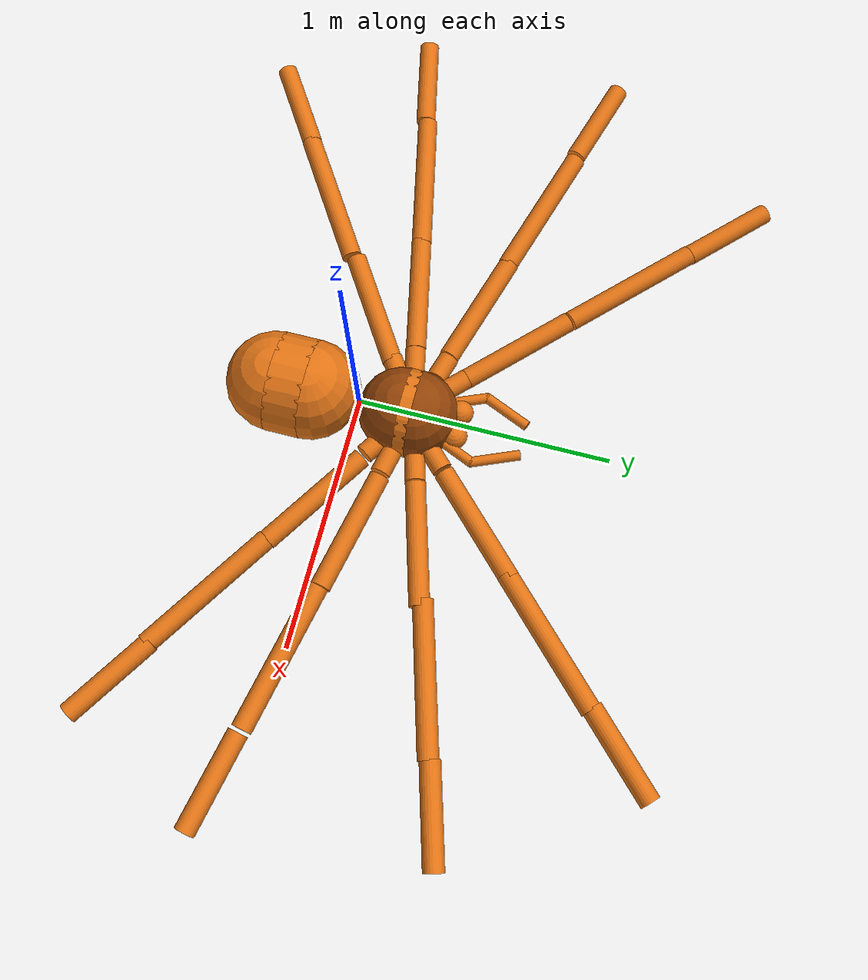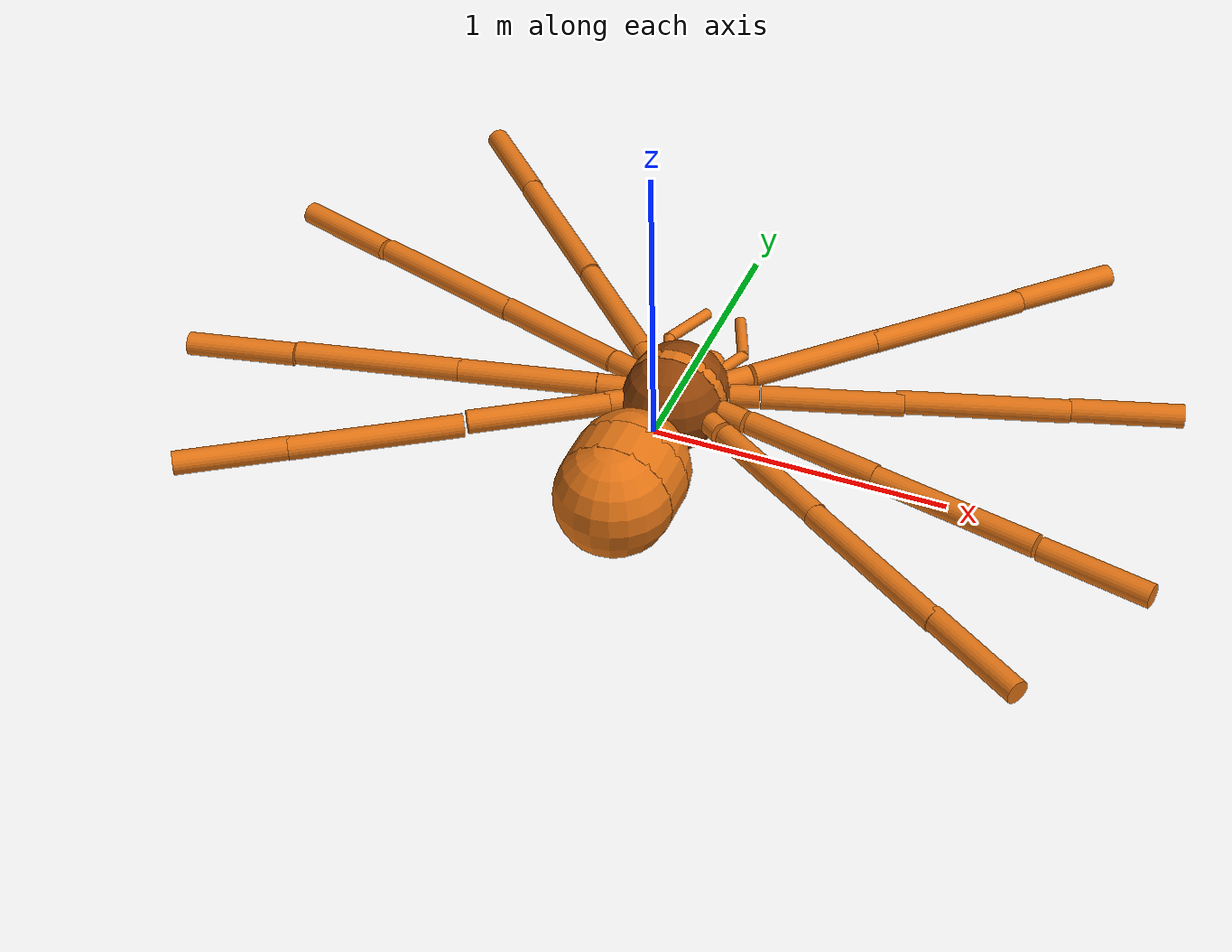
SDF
<?xml version='1.0'?>
<sdf version='1.6'>
<world name='default'>
	<model name="spider">

		<!-- Prevents the robot from falling through the world when visualized in Gazebo. -->
		<joint name="body2world" type="fixed">
			<parent>world</parent>
			<child>body</child>
		</joint>

		<!-- Floating base link -->

		<link name="body">
			<pose>0 0 0 0 0 0</pose>
			<inertial>
				<mass>1.57</mass>
				<inertia>
					<ixx>0.13083</ixx>
					<ixy>0</ixy>
					<ixz>0</ixz>
					<iyy>0</iyy>
					<iyz>0</iyz>
					<izz>0.13083</izz>
				</inertia>
			</inertial>
			<collision name="body_collision">
			    <pose>0 0 0 1.57 1.57 0 </pose>
				<geometry>
					<cylinder>
						<length>1</length>
						<radius>0.2</radius>
					</cylinder>
				</geometry>
			</collision>
			<visual name="abdomen_1">
		    	<pose>0 -0.2 0 0 0 0</pose>
				<geometry>
					<sphere>
						<radius>0.2</radius>
					</sphere>
				</geometry>
				<material>
				    <ambient>0.88 0.45 0.08 1</ambient>
					<diffuse>0.88 0.45 0.08 1</diffuse>
				</material>
			</visual>
			<visual name="abdomen_2">
		    	<pose>0 -0.27 0 1.57 1.57 0</pose>
				<geometry>
					<cylinder>
					    <length>0.14</length>
						<radius>0.2</radius>
					</cylinder>
				</geometry>
				<material>
				    <ambient>0.88 0.45 0.08 1</ambient>
					<diffuse>0.88 0.45 0.08 1</diffuse>
				</material>
			</visual>
			<visual name="abdomen_3">
		    	<pose>0 -0.34 0 0 0 0</pose>
				<geometry>
					<sphere>
						<radius>0.2</radius>
					</sphere>
				</geometry>
				<material>
				    <ambient>0.88 0.45 0.08 1</ambient>
					<diffuse>0.88 0.45 0.08 1</diffuse>
				</material>
			</visual>
			<visual name="thorax_1">
		    	<pose>0 0.175 0 0 0 0</pose>
				<geometry>
					<sphere>
						<radius>0.175</radius>
					</sphere>
				</geometry>
				<material>
				    <ambient>0.57 0.26 0.027 1</ambient>
					<diffuse>0.57 0.26 0.027 1</diffuse>
				</material>
			</visual>
			<visual name="thorax_2">
		    	<pose>0 0.2 0 1.57 1.57 0</pose>
				<geometry>
					<cylinder>
					    <length>0.048</length>
						<radius>0.175</radius>
					</cylinder>
				</geometry>
				<material>
				    <ambient>0.88 0.45 0.08 1</ambient>
					<diffuse>0.88 0.45 0.08 1</diffuse>
				</material>
			</visual>
			<visual name="thorax_3">
		    	<pose>0 0.223 0 0 0 0</pose>
				<geometry>
					<sphere>
						<radius>0.175</radius>
					</sphere>
				</geometry>
				<material>
				    <ambient>0.57 0.26 0.027 1</ambient>
					<diffuse>0.57 0.26 0.027 1</diffuse>
				</material>
			</visual>
			<visual name="chelicera_1">
		    	<pose>-0.05 0.398 0 0 0 0</pose>
				<geometry>
					<sphere>
						<radius>0.05</radius>
					</sphere>
				</geometry>
				<material>
				    <ambient>0.88 0.45 0.08 1</ambient>
					<diffuse>0.88 0.45 0.08 1</diffuse>
				</material>
			</visual>
			<visual name="chelicera_2">
		    	<pose>0.05 0.398 0 0 0 0</pose>
				<geometry>
					<sphere>
						<radius>0.05</radius>
					</sphere>
				</geometry>
				<material>
				    <ambient>0.88 0.45 0.08 1</ambient>
					<diffuse>0.88 0.45 0.08 1</diffuse>
				</material>
			</visual>
			<visual name="pedipalp_left_1">
		    	<pose>-0.1 0.398 0 1.57 1.57 0.4</pose>
				<geometry>
					<cylinder>
					    <length>0.2</length>
						<radius>0.02</radius>
					</cylinder>
				</geometry>
				<material>
				    <ambient>0.88 0.45 0.08 1</ambient>
					<diffuse>0.88 0.45 0.08 1</diffuse>
				</material>
			</visual>
			<visual name="pedipalp_left_2">
		    	<pose>-0.1 0.57 0 1.57 1.57 -0.4</pose>
				<geometry>
					<cylinder>
					    <length>0.2</length>
						<radius>0.02</radius>
					</cylinder>
				</geometry>
				<material>
				    <ambient>0.88 0.45 0.08 1</ambient>
					<diffuse>0.88 0.45 0.08 1</diffuse>
				</material>
			</visual>
			<visual name="pedipalp_right_1">
		    	<pose>0.1 0.398 0 1.57 1.57 -0.4</pose>
				<geometry>
					<cylinder>
					    <length>0.2</length>
						<radius>0.02</radius>
					</cylinder>
				</geometry>
				<material>
				    <ambient>0.88 0.45 0.08 1</ambient>
					<diffuse>0.88 0.45 0.08 1</diffuse>
				</material>
			</visual>
			<visual name="pedipalp_right_2">
		    	<pose>0.1 0.57 0 1.57 1.57 0.4</pose>
				<geometry>
					<cylinder>
					    <length>0.2</length>
						<radius>0.02</radius>
					</cylinder>
				</geometry>
				<material>
				    <ambient>0.88 0.45 0.08 1</ambient>
					<diffuse>0.88 0.45 0.08 1</diffuse>
				</material>
			</visual>
		</link>

		<!-- Leg 1 links -->

		<!-- A temporary link, for the temporary solution of testing
		this file using revolute instead of universal joints -->
		<link name="trochanter_1">
			<pose>-0.124 0.315 0 0 0 0.79</pose>
			<inertial>
				<pose>0 0.05 0 1.57 1.57 0</pose>
				<mass>0.00047</mass>
				<inertia>
					<ixx>0.0000016</ixx>
					<ixy>0</ixy>
					<ixz>0</ixz>
					<iyy>0</iyy>
					<iyz>0</iyz>
					<izz>0.0000016</izz>
				</inertia>
			</inertial>
			<collision name="trochanter_1_collision">
				<pose>0 0.05 0 1.57 1.57 0</pose>
				<geometry>
					<cylinder>
						<length>0.1</length>
						<radius>0.04</radius>
					</cylinder>
				</geometry>
			</collision>
			<visual name="trochanter_1_visual">
				<pose>0 0.05 0 1.57 1.57 0</pose>
				<geometry>
					<cylinder>
						<length>0.1</length>
						<radius>0.04</radius>
					</cylinder>
				</geometry>
				<material>
					<ambient>0.88 0.45 0.08 1</ambient>
					<diffuse>0.88 0.45 0.08 1</diffuse>
				</material>
			</visual>
		</link>

		<link name="femur_1">
			<pose>-0.194 0.385 0 0 0 0.79</pose>
			<inertial>
				<pose>0 0.24 0 1.57 1.57 0</pose>
				<mass>0.00226</mass>
				<inertia>
					<ixx>0.000174</ixx>
					<ixy>0</ixy>
					<ixz>0</ixz>
					<iyy>0</iyy>
					<iyz>0</iyz>
					<izz>0.000174</izz>
				</inertia>
			</inertial>
			<collision name="femur_1_collision">
				<pose>0 0.24 0 1.57 1.57 0</pose>
				<geometry>
					<cylinder>
						<length>0.48</length>
						<radius>0.04</radius>
					</cylinder>
				</geometry>
			</collision>
			<visual name="femur_1_visual">
				<pose>0 0.24 0 1.57 1.57 0</pose>
				<geometry>
					<cylinder>
						<length>0.48</length>
						<radius>0.04</radius>
					</cylinder>
				</geometry>
				<material>
					<ambient>0.88 0.45 0.08 1</ambient>
					<diffuse>0.88 0.45 0.08 1</diffuse>
				</material>
			</visual>
		</link>

		<link name="tibia_1">
			<pose>-0.54 0.73 0 0 0 0.79</pose>
			<inertial>
				<pose>0 0.29 0 1.57 1.57 0</pose>
				<mass>0.00273</mass>
				<inertia>
					<ixx>0.000306</ixx>
					<ixy>0</ixy>
					<ixz>0</ixz>
					<iyy>0</iyy>
					<iyz>0</iyz>
					<izz>0.000306</izz>
				</inertia>
			</inertial>
			<collision name="tibia_1_collision">
				<pose>0 0.29 0 1.57 1.57 0</pose>
				<geometry>
					<cylinder>
						<length>0.58</length>
						<radius>0.04</radius>
					</cylinder>
				</geometry>
			</collision>
			<visual name="tibia_1_visual">
				<pose>0 0.29 0 1.57 1.57 0</pose>
				<geometry>
					<cylinder>
						<length>0.58</length>
						<radius>0.04</radius>
					</cylinder>
				</geometry>
				<material>
					<ambient>0.88 0.45 0.08 1</ambient>
					<diffuse>0.88 0.45 0.08 1</diffuse>
				</material>
			</visual>
		</link>

		<link name="tarsus_1_L1">
			<pose>-0.95 1.14 0 0 0 0.79</pose>
			<inertial>
				<pose>0 0.19 0 1.57 1.57 0</pose>
				<mass>0.00179</mass>
				<inertia>
					<ixx>0.0000862</ixx>
					<ixy>0</ixy>
					<ixz>0</ixz>
					<iyy>0</iyy>
					<iyz>0</iyz>
					<izz>0.0000862</izz>
				</inertia>
			</inertial>
			<collision name="tarsus_1_collision">
				<pose>0 0.19 0 1.57 1.57 0</pose>
				<geometry>
					<cylinder>
						<length>0.38</length>
						<radius>0.04</radius>
					</cylinder>
				</geometry>
				<surface>
          			<friction>
            			<ode>
              				<mu>1</mu>
              				<mu2>1</mu2>
            			</ode>
          			</friction>
         		</surface>
			</collision>
			<visual name="tarsus_1_visual">
				<pose>0 0.19 0 1.57 1.57 0</pose>
				<geometry>
					<cylinder>
						<length>0.38</length>
						<radius>0.04</radius>
					</cylinder>
				</geometry>
				<material>
					<ambient>0.88 0.45 0.08 1</ambient>
					<diffuse>0.88 0.45 0.08 1</diffuse>
				</material>
			</visual>
		</link>

		<!-- Leg 1 joints -->

		<joint name="hip_1" type="revolute">
			<parent>body</parent>
			<child>trochanter_1</child>
			<axis>
				<!-- gazebo expects x-axis, pybullet expects y-axis -->
				<xyz>0 0 1</xyz>
				<limit>
					<lower>-0.61</lower>
					<upper>0.61</upper>
				</limit>
				<use_parent_model_frame>0</use_parent_model_frame>
			</axis>
		</joint>

		<joint name="hip2_1" type="revolute">
			<parent>trochanter_1</parent>
			<child>femur_1</child>
			<axis>
				<xyz>1 0 0</xyz>
				<limit>
					<lower>-0.916</lower>
					<upper>0.916</upper>
				</limit>
				<use_parent_model_frame>0</use_parent_model_frame>
			</axis>
		</joint>

		<joint name="knee_1" type="revolute">
			<parent>femur_1</parent>
			<child>tibia_1</child>
			<axis>
				<!-- gazebo expects x-axis, pybullet expects y-axis -->
				<xyz>1 0 0</xyz>
				<limit>
					<lower>-2.79</lower>
					<upper>0</upper>
				</limit>
			</axis>
		</joint>

		<joint name="ankle_1" type="revolute">
			<parent>tibia_1</parent>
			<child>tarsus_1_L1</child>
			<axis>
				<!-- gazebo expects x-axis, pybullet expects y-axis -->
				<xyz>1 0 0</xyz>
				<limit>
					<lower>-0.61</lower>
					<upper>1.57</upper>
				</limit>
			</axis>
		</joint>

		<!-- Leg 2 links -->

		<!-- A temporary link, for the temporary solution of testing
		this file using revolute instead of universal joints -->
		<link name="trochanter_2">
			<pose>-0.169 0.268 0 0 0 1.28</pose>
			<inertial>
				<pose>0 0.05 0 1.57 1.57 0</pose>
				<mass>0.00047</mass>
				<inertia>
					<ixx>0.0000016</ixx>
					<ixy>0</ixy>
					<ixz>0</ixz>
					<iyy>0</iyy>
					<iyz>0</iyz>
					<izz>0.0000016</izz>
				</inertia>
			</inertial>
			<collision name="trochanter_2_collision">
				<pose>0 0.05 0 1.57 1.57 0</pose>
				<geometry>
					<cylinder>
						<length>0.1</length>
						<radius>0.04</radius>
					</cylinder>
				</geometry>
			</collision>
			<visual name="trochanter_2_visual">
				<pose>0 0.05 0 1.57 1.57 0</pose>
				<geometry>
					<cylinder>
						<length>0.1</length>
						<radius>0.04</radius>
					</cylinder>
				</geometry>
				<material>
					<ambient>0.88 0.45 0.08 1</ambient>
					<diffuse>0.88 0.45 0.08 1</diffuse>
				</material>
			</visual>
		</link>

		<link name="femur_2">
			<pose>-0.269 0.294 0 0 0 1.28</pose>
			<inertial>
				<pose>0 0.24 0 1.57 1.57 0</pose>
				<mass>0.00226</mass>
				<inertia>
					<ixx>0.000174</ixx>
					<ixy>0</ixy>
					<ixz>0</ixz>
					<iyy>0</iyy>
					<iyz>0</iyz>
					<izz>0.000174</izz>
				</inertia>
			</inertial>
			<collision name="femur_2_collision">
				<pose>0 0.24 0 1.57 1.57 0</pose>
				<geometry>
					<cylinder>
						<length>0.48</length>
						<radius>0.04</radius>
					</cylinder>
				</geometry>
			</collision>
			<visual name="femur_2_visual">
				<pose>0 0.24 0 1.57 1.57 0</pose>
				<geometry>
					<cylinder>
						<length>0.48</length>
						<radius>0.04</radius>
					</cylinder>
				</geometry>
				<material>
					<ambient>0.88 0.45 0.08 1</ambient>
					<diffuse>0.88 0.45 0.08 1</diffuse>
				</material>
			</visual>
		</link>

		<link name="tibia_2">
			<pose>-0.72 0.426 0 0 0 1.28</pose>
			<inertial>
				<pose>0 0.29 0 1.57 1.57 0</pose>
				<mass>0.00273</mass>
				<inertia>
					<ixx>0.000306</ixx>
					<ixy>0</ixy>
					<ixz>0</ixz>
					<iyy>0</iyy>
					<iyz>0</iyz>
					<izz>0.000306</izz>
				</inertia>
			</inertial>
			<collision name="tibia_2_collision">
				<pose>0 0.29 0 1.57 1.57 0</pose>
				<geometry>
					<cylinder>
						<length>0.58</length>
						<radius>0.04</radius>
					</cylinder>
				</geometry>
			</collision>
			<visual name="tibia_2_visual">
				<pose>0 0.29 0 1.57 1.57 0</pose>
				<geometry>
					<cylinder>
						<length>0.58</length>
						<radius>0.04</radius>
					</cylinder>
				</geometry>
				<material>
					<ambient>0.88 0.45 0.08 1</ambient>
					<diffuse>0.88 0.45 0.08 1</diffuse>
				</material>
			</visual>
		</link>

		<link name="tarsus_2_L2">
			<pose>-1.29 0.590 0 0 0 1.28</pose>
			<inertial>
				<pose>0 0.19 0 1.57 1.57 0</pose>
				<mass>0.00179</mass>
				<inertia>
					<ixx>0.0000862</ixx>
					<ixy>0</ixy>
					<ixz>0</ixz>
					<iyy>0</iyy>
					<iyz>0</iyz>
					<izz>0.0000862</izz>
				</inertia>
			</inertial>
			<collision name="tarsus_2_collision">
				<pose>0 0.19 0 1.57 1.57 0</pose>
				<geometry>
					<cylinder>
						<length>0.38</length>
						<radius>0.04</radius>
					</cylinder>
				</geometry>
				<surface>
          			<friction>
            			<ode>
              				<mu>1</mu>
              				<mu2>1</mu2>
            			</ode>
          			</friction>
         		</surface>
			</collision>
			<visual name="tarsus_2_visual">
				<pose>0 0.19 0 1.57 1.57 0</pose>
				<geometry>
					<cylinder>
						<length>0.38</length>
						<radius>0.04</radius>
					</cylinder>
				</geometry>
				<material>
					<ambient>0.88 0.45 0.08 1</ambient>
					<diffuse>0.88 0.45 0.08 1</diffuse>
				</material>
			</visual>
		</link>

		<!-- Leg 2 joints -->

		<joint name="hip_2" type="revolute">
			<parent>body</parent>
			<child>trochanter_2</child>
			<axis>
				<!-- gazebo expects x-axis, pybullet expects y-axis -->
				<xyz>0 0 1</xyz>
				<limit>
					<lower>-0.61</lower>
					<upper>0.61</upper>
				</limit>
				<use_parent_model_frame>0</use_parent_model_frame>
			</axis>
		</joint>
		<joint name="hip2_2" type="revolute">
			<parent>trochanter_2</parent>
			<child>femur_2</child>
			<axis>
				<xyz>1 0 0</xyz>
				<limit>
					<lower>-0.916</lower>
					<upper>0.916</upper>
				</limit>
				<use_parent_model_frame>0</use_parent_model_frame>
			</axis>
		</joint>

		<joint name="knee_2" type="revolute">
			<parent>femur_2</parent>
			<child>tibia_2</child>
			<axis>
				<!-- gazebo expects x-axis, pybullet expects y-axis -->
				<xyz>1 0 0</xyz>
				<limit>
					<lower>-2.79</lower>
					<upper>0</upper>
				</limit>
			</axis>
		</joint>

		<joint name="ankle_2" type="revolute">
			<parent>tibia_2</parent>
			<child>tarsus_2_L2</child>
			<axis>
				<!-- gazebo expects x-axis, pybullet expects y-axis -->
				<xyz>1 0 0</xyz>
				<limit>
					<lower>-0.61</lower>
					<upper>1.57</upper>
				</limit>
			</axis>
		</joint>

		<!-- Leg 3 links -->

		<!-- A temporary link, for the temporary solution of testing
		this file using revolute instead of universal joints -->
		<link name="trochanter_3">
			<pose>-0.169 0.178 0 0 0 1.78</pose>
			<inertial>
				<pose>0 0.05 0 1.57 1.57 0</pose>
				<mass>0.00047</mass>
				<inertia>
					<ixx>0.0000016</ixx>
					<ixy>0</ixy>
					<ixz>0</ixz>
					<iyy>0</iyy>
					<iyz>0</iyz>
					<izz>0.0000016</izz>
				</inertia>
			</inertial>
			<collision name="trochanter_3_collision">
				<pose>0 0.05 0 1.57 1.57 0</pose>
				<geometry>
					<cylinder>
						<length>0.1</length>
						<radius>0.04</radius>
					</cylinder>
				</geometry>
			</collision>
			<visual name="trochanter_3_visual">
				<pose>0 0.05 0 1.57 1.57 0</pose>
				<geometry>
					<cylinder>
						<length>0.1</length>
						<radius>0.04</radius>
					</cylinder>
				</geometry>
				<material>
					<ambient>0.88 0.45 0.08 1</ambient>
					<diffuse>0.88 0.45 0.08 1</diffuse>
				</material>
			</visual>
		</link>

		<link name="femur_3">
			<pose>-0.269 0.158 0 0 0 1.78</pose>
			<inertial>
				<pose>0 0.24 0 1.57 1.57 0</pose>
				<mass>0.00226</mass>
				<inertia>
					<ixx>0.000174</ixx>
					<ixy>0</ixy>
					<ixz>0</ixz>
					<iyy>0</iyy>
					<iyz>0</iyz>
					<izz>0.000174</izz>
				</inertia>
			</inertial>
			<collision name="femur_3_collision">
				<pose>0 0.24 0 1.57 1.57 0</pose>
				<geometry>
					<cylinder>
						<length>0.48</length>
						<radius>0.04</radius>
					</cylinder>
				</geometry>
			</collision>
			<visual name="femur_3_visual">
				<pose>0 0.24 0 1.57 1.57 0</pose>
				<geometry>
					<cylinder>
						<length>0.48</length>
						<radius>0.04</radius>
					</cylinder>
				</geometry>
				<material>
					<ambient>0.88 0.45 0.08 1</ambient>
					<diffuse>0.88 0.45 0.08 1</diffuse>
				</material>
			</visual>
		</link>

		<link name="tibia_3">
			<pose>-0.73 0.06 0 0 0 1.78</pose>
			<inertial>
				<pose>0 0.29 0 1.57 1.57 0</pose>
				<mass>0.00273</mass>
				<inertia>
					<ixx>0.000306</ixx>
					<ixy>0</ixy>
					<ixz>0</ixz>
					<iyy>0</iyy>
					<iyz>0</iyz>
					<izz>0.000306</izz>
				</inertia>
			</inertial>
			<collision name="tibia_3_collision">
				<pose>0 0.29 0 1.57 1.57 0</pose>
				<geometry>
					<cylinder>
						<length>0.58</length>
						<radius>0.04</radius>
					</cylinder>
				</geometry>
			</collision>
			<visual name="tibia_3_visual">
				<pose>0 0.29 0 1.57 1.57 0</pose>
				<geometry>
					<cylinder>
						<length>0.58</length>
						<radius>0.04</radius>
					</cylinder>
				</geometry>
				<material>
					<ambient>0.88 0.45 0.08 1</ambient>
					<diffuse>0.88 0.45 0.08 1</diffuse>
				</material>
			</visual>
		</link>

		<link name="tarsus_3_L3">
			<pose>-1.30 -0.07 0 0 0 1.78</pose>
			<inertial>
				<pose>0 0.19 0 1.57 1.57 0</pose>
				<mass>0.00179</mass>
				<inertia>
					<ixx>0.0000862</ixx>
					<ixy>0</ixy>
					<ixz>0</ixz>
					<iyy>0</iyy>
					<iyz>0</iyz>
					<izz>0.0000862</izz>
				</inertia>
			</inertial>
			<collision name="tarsus_3_collision">
				<pose>0 0.19 0 1.57 1.57 0</pose>
				<geometry>
					<cylinder>
						<length>0.38</length>
						<radius>0.04</radius>
					</cylinder>
				</geometry>
				<surface>
          			<friction>
            			<ode>
              				<mu>1</mu>
              				<mu2>1</mu2>
            			</ode>
          			</friction>
         		</surface>
			</collision>
			<visual name="tarsus_3_visual">
				<pose>0 0.19 0 1.57 1.57 0</pose>
				<geometry>
					<cylinder>
						<length>0.38</length>
						<radius>0.04</radius>
					</cylinder>
				</geometry>
				<material>
					<ambient>0.88 0.45 0.08 1</ambient>
					<diffuse>0.88 0.45 0.08 1</diffuse>
				</material>
			</visual>
		</link>

		<!-- Leg 3 joints -->

		<joint name="hip_3" type="revolute">
			<parent>body</parent>
			<child>trochanter_3</child>
			<axis>
				<!-- gazebo expects x-axis, pybullet expects y-axis -->
				<xyz>0 0 1</xyz>
				<limit>
					<lower>-0.61</lower>
					<upper>0.61</upper>
				</limit>
				<use_parent_model_frame>0</use_parent_model_frame>
			</axis>
		</joint>
		<joint name="hip2_3" type="revolute">
			<parent>trochanter_3</parent>
			<child>femur_3</child>
			<axis>
				<xyz>1 0 0</xyz>
				<limit>
					<lower>-0.916</lower>
					<upper>0.916</upper>
				</limit>
				<use_parent_model_frame>0</use_parent_model_frame>
			</axis>
		</joint>

		<joint name="knee_3" type="revolute">
			<parent>femur_3</parent>
			<child>tibia_3</child>
			<axis>
				<!-- gazebo expects x-axis, pybullet expects y-axis -->
				<xyz>1 0 0</xyz>
				<limit>
					<lower>-2.79</lower>
					<upper>0</upper>
				</limit>
			</axis>
		</joint>

		<joint name="ankle_3" type="revolute">
			<parent>tibia_3</parent>
			<child>tarsus_3_L3</child>
			<axis>
				<!-- gazebo expects x-axis, pybullet expects y-axis -->
				<xyz>1 0 0</xyz>
				<limit>
					<lower>-0.61</lower>
					<upper>1.57</upper>
				</limit>
			</axis>
		</joint>

		<!-- Leg 4 links -->

		<!-- A temporary link, for the temporary solution of testing
		this file using revolute instead of universal joints -->
		<link name="trochanter_4">
			<pose>-0.124 0.131 0 0 0 2.147</pose>
			<inertial>
				<pose>0 0.05 0 1.57 1.57 0</pose>
				<mass>0.00047</mass>
				<inertia>
					<ixx>0.0000016</ixx>
					<ixy>0</ixy>
					<ixz>0</ixz>
					<iyy>0</iyy>
					<iyz>0</iyz>
					<izz>0.0000016</izz>
				</inertia>
			</inertial>
			<collision name="trochanter_4_collision">
				<pose>0 0.05 0 1.57 1.57 0</pose>
				<geometry>
					<cylinder>
						<length>0.1</length>
						<radius>0.04</radius>
					</cylinder>
				</geometry>
			</collision>
			<visual name="trochanter_4_visual">
				<pose>0 0.05 0 1.57 1.57 0</pose>
				<geometry>
					<cylinder>
						<length>0.1</length>
						<radius>0.04</radius>
					</cylinder>
				</geometry>
				<material>
					<ambient>0.88 0.45 0.08 1</ambient>
					<diffuse>0.88 0.45 0.08 1</diffuse>
				</material>
			</visual>
		</link>

		<link name="femur_4">
			<pose>-0.194 0.081 0 0 0 2.147</pose>
			<inertial>
				<pose>0 0.24 0 1.57 1.57 0</pose>
				<mass>0.00226</mass>
				<inertia>
					<ixx>0.000174</ixx>
					<ixy>0</ixy>
					<ixz>0</ixz>
					<iyy>0</iyy>
					<iyz>0</iyz>
					<izz>0.000174</izz>
				</inertia>
			</inertial>
			<collision name="femur_4_collision">
				<pose>0 0.24 0 1.57 1.57 0</pose>
				<geometry>
					<cylinder>
						<length>0.48</length>
						<radius>0.04</radius>
					</cylinder>
				</geometry>
			</collision>
			<visual name="femur_4_visual">
				<pose>0 0.24 0 1.57 1.57 0</pose>
				<geometry>
					<cylinder>
						<length>0.48</length>
						<radius>0.04</radius>
					</cylinder>
				</geometry>
				<material>
					<ambient>0.88 0.45 0.08 1</ambient>
					<diffuse>0.88 0.45 0.08 1</diffuse>
				</material>
			</visual>
		</link>

		<link name="tibia_4">
			<pose>-0.60 -0.20 0 0 0 2.147</pose>
			<inertial>
				<pose>0 0.29 0 1.57 1.57 0</pose>
				<mass>0.00273</mass>
				<inertia>
					<ixx>0.000306</ixx>
					<ixy>0</ixy>
					<ixz>0</ixz>
					<iyy>0</iyy>
					<iyz>0</iyz>
					<izz>0.000306</izz>
				</inertia>
			</inertial>
			<collision name="tibia_4_collision">
				<pose>0 0.29 0 1.57 1.57 0</pose>
				<geometry>
					<cylinder>
						<length>0.58</length>
						<radius>0.04</radius>
					</cylinder>
				</geometry>
			</collision>
			<visual name="tibia_4_visual">
				<pose>0 0.29 0 1.57 1.57 0</pose>
				<geometry>
					<cylinder>
						<length>0.58</length>
						<radius>0.04</radius>
					</cylinder>
				</geometry>
				<material>
					<ambient>0.88 0.45 0.08 1</ambient>
					<diffuse>0.88 0.45 0.08 1</diffuse>
				</material>
			</visual>
		</link>

		<link name="tarsus_4_L4">
			<pose>-1.08 -0.51 0 0 0 2.147</pose>
			<inertial>
				<pose>0 0.19 0 1.57 1.57 0</pose>
				<mass>0.00179</mass>
				<inertia>
					<ixx>0.0000862</ixx>
					<ixy>0</ixy>
					<ixz>0</ixz>
					<iyy>0</iyy>
					<iyz>0</iyz>
					<izz>0.0000862</izz>
				</inertia>
			</inertial>
			<collision name="tarsus_4_collision">
				<pose>0 0.19 0 1.57 1.57 0</pose>
				<geometry>
					<cylinder>
						<length>0.38</length>
						<radius>0.04</radius>
					</cylinder>
				</geometry>
				<surface>
          			<friction>
            			<ode>
              				<mu>1</mu>
              				<mu2>1</mu2>
            			</ode>
          			</friction>
         		</surface>
			</collision>
			<visual name="tarsus_4_visual">
				<pose>0 0.19 0 1.57 1.57 0</pose>
				<geometry>
					<cylinder>
						<length>0.38</length>
						<radius>0.04</radius>
					</cylinder>
				</geometry>
				<material>
					<ambient>0.88 0.45 0.08 1</ambient>
					<diffuse>0.88 0.45 0.08 1</diffuse>
				</material>
			</visual>
		</link>

		<!-- Leg 4 joints -->

		<joint name="hip_4" type="revolute">
			<parent>body</parent>
			<child>trochanter_4</child>
			<axis>
				<!-- gazebo expects x-axis, pybullet expects y-axis -->
				<xyz>0 0 1</xyz>
				<limit>
					<lower>-0.61</lower>
					<upper>0.61</upper>
				</limit>
				<use_parent_model_frame>0</use_parent_model_frame>
			</axis>
		</joint>
		<joint name="hip2_4" type="revolute">
			<parent>trochanter_4</parent>
			<child>femur_4</child>
			<axis>
				<xyz>1 0 0</xyz>
				<limit>
					<lower>-0.916</lower>
					<upper>0.916</upper>
				</limit>
				<use_parent_model_frame>0</use_parent_model_frame>
			</axis>
		</joint>

		<joint name="knee_4" type="revolute">
			<parent>femur_4</parent>
			<child>tibia_4</child>
			<axis>
				<!-- gazebo expects x-axis, pybullet expects y-axis -->
				<xyz>1 0 0</xyz>
				<limit>
					<lower>-2.79</lower>
					<upper>0</upper>
				</limit>
			</axis>
		</joint>

		<joint name="ankle_4" type="revolute">
			<parent>tibia_4</parent>
			<child>tarsus_4_L4</child>
			<axis>
				<!-- gazebo expects x-axis, pybullet expects y-axis -->
				<xyz>1 0 0</xyz>
				<limit>
					<lower>-0.61</lower>
					<upper>1.57</upper>
				</limit>
			</axis>
		</joint>

		<!-- Leg 5 links -->

		<!-- A temporary link, for the temporary solution of testing
		this file using revolute instead of universal joints -->
		<link name="trochanter_5">
			<pose>0.124 0.131 0 0 0 4.14</pose>
			<inertial>
				<pose>0 0.05 0 1.57 1.57 0</pose>
				<mass>0.00047</mass>
				<inertia>
					<ixx>0.0000016</ixx>
					<ixy>0</ixy>
					<ixz>0</ixz>
					<iyy>0</iyy>
					<iyz>0</iyz>
					<izz>0.0000016</izz>
				</inertia>
			</inertial>
			<collision name="trochanter_5_collision">
				<pose>0 0.05 0 1.57 1.57 0</pose>
				<geometry>
					<cylinder>
						<length>0.1</length>
						<radius>0.04</radius>
					</cylinder>
				</geometry>
			</collision>
			<visual name="trochanter_5_visual">
				<pose>0 0.05 0 1.57 1.57 0</pose>
				<geometry>
					<cylinder>
						<length>0.1</length>
						<radius>0.04</radius>
					</cylinder>
				</geometry>
				<material>
					<ambient>0.88 0.45 0.08 1</ambient>
					<diffuse>0.88 0.45 0.08 1</diffuse>
				</material>
			</visual>
		</link>

		<link name="femur_5">
			<pose>0.225 0.071 0 0 0 4.14</pose>
			<inertial>
				<pose>0 0.24 0 1.57 1.57 0</pose>
				<mass>0.00226</mass>
				<inertia>
					<ixx>0.000174</ixx>
					<ixy>0</ixy>
					<ixz>0</ixz>
					<iyy>0</iyy>
					<iyz>0</iyz>
					<izz>0.000174</izz>
				</inertia>
			</inertial>
			<collision name="femur_5_collision">
				<pose>0 0.24 0 1.57 1.57 0</pose>
				<geometry>
					<cylinder>
						<length>0.48</length>
						<radius>0.04</radius>
					</cylinder>
				</geometry>
			</collision>
			<visual name="femur_5_visual">
				<pose>0 0.24 0 1.57 1.57 0</pose>
				<geometry>
					<cylinder>
						<length>0.48</length>
						<radius>0.04</radius>
					</cylinder>
				</geometry>
				<material>
					<ambient>0.88 0.45 0.08 1</ambient>
					<diffuse>0.88 0.45 0.08 1</diffuse>
				</material>
			</visual>
		</link>

		<link name="tibia_5">
			<pose>0.624 -0.19 0 0 0 4.14</pose>
			<inertial>
				<pose>0 0.29 0 1.57 1.57 0</pose>
				<mass>0.00273</mass>
				<inertia>
					<ixx>0.000306</ixx>
					<ixy>0</ixy>
					<ixz>0</ixz>
					<iyy>0</iyy>
					<iyz>0</iyz>
					<izz>0.000306</izz>
				</inertia>
			</inertial>
			<collision name="tibia_5_collision">
				<pose>0 0.29 0 1.57 1.57 0</pose>
				<geometry>
					<cylinder>
						<length>0.58</length>
						<radius>0.04</radius>
					</cylinder>
				</geometry>
			</collision>
			<visual name="tibia_5_visual">
				<pose>0 0.29 0 1.57 1.57 0</pose>
				<geometry>
					<cylinder>
						<length>0.58</length>
						<radius>0.04</radius>
					</cylinder>
				</geometry>
				<material>
					<ambient>0.88 0.45 0.08 1</ambient>
					<diffuse>0.88 0.45 0.08 1</diffuse>
				</material>
			</visual>
		</link>

		<link name="tarsus_5_R4">
			<pose>1.1 -0.49 0 0 0 4.14</pose>
			<inertial>
				<pose>0 0.19 0 1.57 1.57 0</pose>
				<mass>0.00179</mass>
				<inertia>
					<ixx>0.0000862</ixx>
					<ixy>0</ixy>
					<ixz>0</ixz>
					<iyy>0</iyy>
					<iyz>0</iyz>
					<izz>0.0000862</izz>
				</inertia>
			</inertial>
			<collision name="tarsus_5_collision">
				<pose>0 0.19 0 1.57 1.57 0</pose>
				<geometry>
					<cylinder>
						<length>0.38</length>
						<radius>0.04</radius>
					</cylinder>
				</geometry>
				<surface>
          			<friction>
            			<ode>
              				<mu>1</mu>
              				<mu2>1</mu2>
            			</ode>
          			</friction>
         		</surface>
			</collision>
			<visual name="tarsus_5_visual">
				<pose>0 0.19 0 1.57 1.57 0</pose>
				<geometry>
					<cylinder>
						<length>0.38</length>
						<radius>0.04</radius>
					</cylinder>
				</geometry>
				<material>
					<ambient>0.88 0.45 0.08 1</ambient>
					<diffuse>0.88 0.45 0.08 1</diffuse>
				</material>
			</visual>
		</link>

		<!-- Leg 5 joints -->

		<joint name="hip_5" type="revolute">
			<parent>body</parent>
			<child>trochanter_5</child>
			<axis>
				<!-- gazebo expects x-axis, pybullet expects y-axis -->
				<xyz>0 0 1</xyz>
				<limit>
					<lower>-0.61</lower>
					<upper>0.61</upper>
				</limit>
				<use_parent_model_frame>0</use_parent_model_frame>
			</axis>
		</joint>
		<joint name="hip2_5" type="revolute">
			<parent>trochanter_5</parent>
			<child>femur_5</child>
			<axis>
				<xyz>1 0 0</xyz>
				<limit>
					<lower>-0.916</lower>
					<upper>0.916</upper>
				</limit>
				<use_parent_model_frame>0</use_parent_model_frame>
			</axis>
		</joint>

		<joint name="knee_5" type="revolute">
			<parent>femur_5</parent>
			<child>tibia_5</child>
			<axis>
				<!-- gazebo expects x-axis, pybullet expects y-axis -->
				<xyz>1 0 0</xyz>
				<limit>
					<lower>-2.79</lower>
					<upper>0</upper>
				</limit>
			</axis>
		</joint>

		<joint name="ankle_5" type="revolute">
			<parent>tibia_5</parent>
			<child>tarsus_5_R4</child>
			<axis>
				<!-- gazebo expects x-axis, pybullet expects y-axis -->
				<xyz>1 0 0</xyz>
				<limit>
					<lower>-0.61</lower>
					<upper>1.57</upper>
				</limit>
			</axis>
		</joint>

		<!-- Leg 6 links -->

		<!-- A temporary link, for the temporary solution of testing
		this file using revolute instead of universal joints -->
		<link name="trochanter_6">
			<pose>0.169 0.178 0 0 0 4.5</pose>
			<inertial>
				<pose>0 0.05 0 1.57 1.57 0</pose>
				<mass>0.00047</mass>
				<inertia>
					<ixx>0.0000016</ixx>
					<ixy>0</ixy>
					<ixz>0</ixz>
					<iyy>0</iyy>
					<iyz>0</iyz>
					<izz>0.0000016</izz>
				</inertia>
			</inertial>
			<collision name="trochanter_6_collision">
				<pose>0 0.05 0 1.57 1.57 0</pose>
				<geometry>
					<cylinder>
						<length>0.1</length>
						<radius>0.04</radius>
					</cylinder>
				</geometry>
			</collision>
			<visual name="trochanter_6_visual">
				<pose>0 0.05 0 1.57 1.57 0</pose>
				<geometry>
					<cylinder>
						<length>0.1</length>
						<radius>0.04</radius>
					</cylinder>
				</geometry>
				<material>
					<ambient>0.88 0.45 0.08 1</ambient>
					<diffuse>0.88 0.45 0.08 1</diffuse>
				</material>
			</visual>
		</link>

		<link name="femur_6">
			<pose>0.28 0.158 0 0 0 4.5</pose>
			<inertial>
				<pose>0 0.24 0 1.57 1.57 0</pose>
				<mass>0.00226</mass>
				<inertia>
					<ixx>0.000174</ixx>
					<ixy>0</ixy>
					<ixz>0</ixz>
					<iyy>0</iyy>
					<iyz>0</iyz>
					<izz>0.000174</izz>
				</inertia>
			</inertial>
			<collision name="femur_6_collision">
				<pose>0 0.24 0 1.57 1.57 0</pose>
				<geometry>
					<cylinder>
						<length>0.48</length>
						<radius>0.04</radius>
					</cylinder>
				</geometry>
			</collision>
			<visual name="femur_6_visual">
				<pose>0 0.24 0 1.57 1.57 0</pose>
				<geometry>
					<cylinder>
						<length>0.48</length>
						<radius>0.04</radius>
					</cylinder>
				</geometry>
				<material>
					<ambient>0.88 0.45 0.08 1</ambient>
					<diffuse>0.88 0.45 0.08 1</diffuse>
				</material>
			</visual>
		</link>

		<link name="tibia_6">
			<pose>0.75 0.05 0 0 0 4.5</pose>
			<inertial>
				<pose>0 0.29 0 1.57 1.57 0</pose>
				<mass>0.00273</mass>
				<inertia>
					<ixx>0.000306</ixx>
					<ixy>0</ixy>
					<ixz>0</ixz>
					<iyy>0</iyy>
					<iyz>0</iyz>
					<izz>0.000306</izz>
				</inertia>
			</inertial>
			<collision name="tibia_6_collision">
				<pose>0 0.29 0 1.57 1.57 0</pose>
				<geometry>
					<cylinder>
						<length>0.58</length>
						<radius>0.04</radius>
					</cylinder>
				</geometry>
			</collision>
			<visual name="tibia_6_visual">
				<pose>0 0.29 0 1.57 1.57 0</pose>
				<geometry>
					<cylinder>
						<length>0.58</length>
						<radius>0.04</radius>
					</cylinder>
				</geometry>
				<material>
					<ambient>0.88 0.45 0.08 1</ambient>
					<diffuse>0.88 0.45 0.08 1</diffuse>
				</material>
			</visual>
		</link>

		<link name="tarsus_6_R3">
			<pose>1.33 -0.08 0 0 0 4.5</pose>
			<inertial>
				<pose>0 0.19 0 1.57 1.57 0</pose>
				<mass>0.00179</mass>
				<inertia>
					<ixx>0.0000862</ixx>
					<ixy>0</ixy>
					<ixz>0</ixz>
					<iyy>0</iyy>
					<iyz>0</iyz>
					<izz>0.0000862</izz>
				</inertia>
			</inertial>
			<collision name="tarsus_6_collision">
				<pose>0 0.19 0 1.57 1.57 0</pose>
				<geometry>
					<cylinder>
						<length>0.38</length>
						<radius>0.04</radius>
					</cylinder>
				</geometry>
				<surface>
          			<friction>
            			<ode>
              				<mu>1</mu>
              				<mu2>1</mu2>
            			</ode>
          			</friction>
         		</surface>
			</collision>
			<visual name="tarsus_6_visual">
				<pose>0 0.19 0 1.57 1.57 0</pose>
				<geometry>
					<cylinder>
						<length>0.38</length>
						<radius>0.04</radius>
					</cylinder>
				</geometry>
				<material>
					<ambient>0.88 0.45 0.08 1</ambient>
					<diffuse>0.88 0.45 0.08 1</diffuse>
				</material>
			</visual>
		</link>

		<!-- Leg 6 joints -->

		<joint name="hip_6" type="revolute">
			<parent>body</parent>
			<child>trochanter_6</child>
			<axis>
				<!-- gazebo expects x-axis, pybullet expects y-axis -->
				<xyz>0 0 1</xyz>
				<limit>
					<lower>-0.61</lower>
					<upper>0.61</upper>
				</limit>
				<use_parent_model_frame>0</use_parent_model_frame>
			</axis>
		</joint>
		<joint name="hip2_6" type="revolute">
			<parent>trochanter_6</parent>
			<child>femur_6</child>
			<axis>
				<xyz>1 0 0</xyz>
				<limit>
					<lower>-0.916</lower>
					<upper>0.916</upper>
				</limit>
				<use_parent_model_frame>0</use_parent_model_frame>
			</axis>
		</joint>

		<joint name="knee_6" type="revolute">
			<parent>femur_6</parent>
			<child>tibia_6</child>
			<axis>
				<!-- gazebo expects x-axis, pybullet expects y-axis -->
				<xyz>1 0 0</xyz>
				<limit>
					<lower>-2.79</lower>
					<upper>0</upper>
				</limit>
			</axis>
		</joint>

		<joint name="ankle_6" type="revolute">
			<parent>tibia_6</parent>
			<child>tarsus_6_R3</child>
			<axis>
				<!-- gazebo expects x-axis, pybullet expects y-axis -->
				<xyz>1 0 0</xyz>
				<limit>
					<lower>-0.61</lower>
					<upper>1.57</upper>
				</limit>
			</axis>
		</joint>

		<!-- Leg 7 links -->

		<!-- A temporary link, for the temporary solution of testing
		this file using revolute instead of universal joints -->
		<link name="trochanter_7">
			<pose>0.169 0.268 0 0 0 5</pose>
			<inertial>
				<pose>0 0.05 0 1.57 1.57 0</pose>
				<mass>0.00047</mass>
				<inertia>
					<ixx>0.0000016</ixx>
					<ixy>0</ixy>
					<ixz>0</ixz>
					<iyy>0</iyy>
					<iyz>0</iyz>
					<izz>0.0000016</izz>
				</inertia>
			</inertial>
			<collision name="trochanter_7_collision">
				<pose>0 0.05 0 1.57 1.57 0</pose>
				<geometry>
					<cylinder>
						<length>0.1</length>
						<radius>0.04</radius>
					</cylinder>
				</geometry>
			</collision>
			<visual name="trochanter_7_visual">
				<pose>0 0.05 0 1.57 1.57 0</pose>
				<geometry>
					<cylinder>
						<length>0.1</length>
						<radius>0.04</radius>
					</cylinder>
				</geometry>
				<material>
					<ambient>0.88 0.45 0.08 1</ambient>
					<diffuse>0.88 0.45 0.08 1</diffuse>
				</material>
			</visual>
		</link>

		<link name="femur_7">
			<pose>0.27 0.298 0 0 0 5</pose>
			<inertial>
				<pose>0 0.24 0 1.57 1.57 0</pose>
				<mass>0.00226</mass>
				<inertia>
					<ixx>0.000174</ixx>
					<ixy>0</ixy>
					<ixz>0</ixz>
					<iyy>0</iyy>
					<iyz>0</iyz>
					<izz>0.000174</izz>
				</inertia>
			</inertial>
			<collision name="femur_7_collision">
				<pose>0 0.24 0 1.57 1.57 0</pose>
				<geometry>
					<cylinder>
						<length>0.48</length>
						<radius>0.04</radius>
					</cylinder>
				</geometry>
			</collision>
			<visual name="femur_7_visual">
				<pose>0 0.24 0 1.57 1.57 0</pose>
				<geometry>
					<cylinder>
						<length>0.48</length>
						<radius>0.04</radius>
					</cylinder>
				</geometry>
				<material>
					<ambient>0.88 0.45 0.08 1</ambient>
					<diffuse>0.88 0.45 0.08 1</diffuse>
				</material>
			</visual>
		</link>

		<link name="tibia_7">
			<pose>0.7 0.44 0 0 0 5</pose>
			<inertial>
				<pose>0 0.29 0 1.57 1.57 0</pose>
				<mass>0.00273</mass>
				<inertia>
					<ixx>0.000306</ixx>
					<ixy>0</ixy>
					<ixz>0</ixz>
					<iyy>0</iyy>
					<iyz>0</iyz>
					<izz>0.000306</izz>
				</inertia>
			</inertial>
			<collision name="tibia_7_collision">
				<pose>0 0.29 0 1.57 1.57 0</pose>
				<geometry>
					<cylinder>
						<length>0.58</length>
						<radius>0.04</radius>
					</cylinder>
				</geometry>
			</collision>
			<visual name="tibia_7_visual">
				<pose>0 0.29 0 1.57 1.57 0</pose>
				<geometry>
					<cylinder>
						<length>0.58</length>
						<radius>0.04</radius>
					</cylinder>
				</geometry>
				<material>
					<ambient>0.88 0.45 0.08 1</ambient>
					<diffuse>0.88 0.45 0.08 1</diffuse>
				</material>
			</visual>
		</link>

		<link name="tarsus_7_R2">
			<pose>1.25 0.61 0 0 0 5</pose>
			<inertial>
				<pose>0 0.19 0 1.57 1.57 0</pose>
				<mass>0.00179</mass>
				<inertia>
					<ixx>0.0000862</ixx>
					<ixy>0</ixy>
					<ixz>0</ixz>
					<iyy>0</iyy>
					<iyz>0</iyz>
					<izz>0.0000862</izz>
				</inertia>
			</inertial>
			<collision name="tarsus_7_collision">
				<pose>0 0.19 0 1.57 1.57 0</pose>
				<geometry>
					<cylinder>
						<length>0.38</length>
						<radius>0.04</radius>
					</cylinder>
				</geometry>
				<surface>
          			<friction>
            			<ode>
              				<mu>1</mu>
              				<mu2>1</mu2>
            			</ode>
          			</friction>
         		</surface>
			</collision>
			<visual name="tarsus_7_visual">
				<pose>0 0.19 0 1.57 1.57 0</pose>
				<geometry>
					<cylinder>
						<length>0.38</length>
						<radius>0.04</radius>
					</cylinder>
				</geometry>
				<material>
					<ambient>0.88 0.45 0.08 1</ambient>
					<diffuse>0.88 0.45 0.08 1</diffuse>
				</material>
			</visual>
		</link>

		<!-- Leg 7 joints -->

		<joint name="hip_7" type="revolute">
			<parent>body</parent>
			<child>trochanter_7</child>
			<axis>
				<!-- gazebo expects x-axis, pybullet expects y-axis -->
				<xyz>0 0 1</xyz>
				<limit>
					<lower>-0.61</lower>
					<upper>0.61</upper>
				</limit>
				<use_parent_model_frame>0</use_parent_model_frame>
			</axis>
		</joint>
		<joint name="hip2_7" type="revolute">
			<parent>trochanter_7</parent>
			<child>femur_7</child>
			<axis>
				<xyz>1 0 0</xyz>
				<limit>
					<lower>-0.916</lower>
					<upper>0.916</upper>
				</limit>
				<use_parent_model_frame>0</use_parent_model_frame>
			</axis>
		</joint>

		<joint name="knee_7" type="revolute">
			<parent>femur_7</parent>
			<child>tibia_7</child>
			<axis>
				<!-- gazebo expects x-axis, pybullet expects y-axis -->
				<xyz>1 0 0</xyz>
				<limit>
					<lower>-2.79</lower>
					<upper>0</upper>
				</limit>
			</axis>
		</joint>

		<joint name="ankle_7" type="revolute">
			<parent>tibia_7</parent>
			<child>tarsus_7_R2</child>
			<axis>
				<!-- gazebo expects x-axis, pybullet expects y-axis -->
				<xyz>1 0 0</xyz>
				<limit>
					<lower>-0.61</lower>
					<upper>1.57</upper>
				</limit>
			</axis>
		</joint>

		<!-- Leg 8 links -->

		<!-- A temporary link, for the temporary solution of testing
		this file using revolute instead of universal joints -->
		<link name="trochanter_8">
			<pose>0.124 0.315 0 0 0 5.497</pose>
			<inertial>
				<pose>0 0.05 0 1.57 1.57 0</pose>
				<mass>0.00047</mass>
				<inertia>
					<ixx>0.0000016</ixx>
					<ixy>0</ixy>
					<ixz>0</ixz>
					<iyy>0</iyy>
					<iyz>0</iyz>
					<izz>0.0000016</izz>
				</inertia>
			</inertial>
			<collision name="trochanter_8_collision">
				<pose>0 0.05 0 1.57 1.57 0</pose>
				<geometry>
					<cylinder>
						<length>0.1</length>
						<radius>0.04</radius>
					</cylinder>
				</geometry>
			</collision>
			<visual name="trochanter_8_visual">
				<pose>0 0.05 0 1.57 1.57 0</pose>
				<geometry>
					<cylinder>
						<length>0.1</length>
						<radius>0.04</radius>
					</cylinder>
				</geometry>
				<material>
					<ambient>0.88 0.45 0.08 1</ambient>
					<diffuse>0.88 0.45 0.08 1</diffuse>
				</material>
			</visual>
		</link>

		<link name="femur_8">
			<pose>0.204 0.395 0 0 0 5.497</pose>
			<inertial>
				<pose>0 0.24 0 1.57 1.57 0</pose>
				<mass>0.00226</mass>
				<inertia>
					<ixx>0.000174</ixx>
					<ixy>0</ixy>
					<ixz>0</ixz>
					<iyy>0</iyy>
					<iyz>0</iyz>
					<izz>0.000174</izz>
				</inertia>
			</inertial>
			<collision name="femur_8_collision">
				<pose>0 0.24 0 1.57 1.57 0</pose>
				<geometry>
					<cylinder>
						<length>0.48</length>
						<radius>0.04</radius>
					</cylinder>
				</geometry>
			</collision>
			<visual name="femur_8_visual">
				<pose>0 0.24 0 1.57 1.57 0</pose>
				<geometry>
					<cylinder>
						<length>0.48</length>
						<radius>0.04</radius>
					</cylinder>
				</geometry>
				<material>
					<ambient>0.88 0.45 0.08 1</ambient>
					<diffuse>0.88 0.45 0.08 1</diffuse>
				</material>
			</visual>
		</link>

		<link name="tibia_8">
		    <pose>0.53 0.72 0 0 0 5.497</pose>
			<inertial>
				<pose>0 0.29 0 1.57 1.57 0</pose>
				<mass>0.00273</mass>
				<inertia>
					<ixx>0.000306</ixx>
					<ixy>0</ixy>
					<ixz>0</ixz>
					<iyy>0</iyy>
					<iyz>0</iyz>
					<izz>0.000306</izz>
				</inertia>
			</inertial>
			<collision name="tibia_8_collision">
				<pose>0 0.29 0 1.57 1.57 0</pose>
				<geometry>
					<cylinder>
						<length>0.58</length>
						<radius>0.04</radius>
					</cylinder>
				</geometry>
			</collision>
			<visual name="tibia_8_visual">
				<pose>0 0.29 0 1.57 1.57 0</pose>
				<geometry>
					<cylinder>
						<length>0.58</length>
						<radius>0.04</radius>
					</cylinder>
				</geometry>
				<material>
					<ambient>0.88 0.45 0.08 1</ambient>
					<diffuse>0.88 0.45 0.08 1</diffuse>
				</material>
			</visual>
		</link>

		<link name="tarsus_8_R1">
			<pose>0.93 1.13 0 0 0 5.497</pose>
			<inertial>
				<pose>0 0.19 0 1.57 1.57 0</pose>
				<mass>0.00179</mass>
				<inertia>
					<ixx>0.0000862</ixx>
					<ixy>0</ixy>
					<ixz>0</ixz>
					<iyy>0</iyy>
					<iyz>0</iyz>
					<izz>0.0000862</izz>
				</inertia>
			</inertial>
			<collision name="tarsus_8_collision">
				<pose>0 0.19 0 1.57 1.57 0</pose>
				<geometry>
					<cylinder>
						<length>0.38</length>
						<radius>0.04</radius>
					</cylinder>
				</geometry>
				<surface>
          			<friction>
            			<ode>
              				<mu>1</mu>
              				<mu2>1</mu2>
            			</ode>
          			</friction>
         		</surface>
			</collision>
			<visual name="tarsus_8_visual">
				<pose>0 0.19 0 1.57 1.57 0</pose>
				<geometry>
					<cylinder>
						<length>0.38</length>
						<radius>0.04</radius>
					</cylinder>
				</geometry>
				<material>
					<ambient>0.88 0.45 0.08 1</ambient>
					<diffuse>0.88 0.45 0.08 1</diffuse>
				</material>
			</visual>
		</link>

		<!-- Leg 8 joints -->

		<joint name="hip_8" type="revolute">
			<parent>body</parent>
			<child>trochanter_8</child>

			<axis>
				<!-- gazebo expects x-axis, pybullet expects y-axis -->
				<xyz>0 0 1</xyz>
				<limit>
					<lower>-0.61</lower>
					<upper>0.61</upper>
				</limit>
				<use_parent_model_frame>0</use_parent_model_frame>
			</axis>
		</joint>
		<joint name="hip2_8" type="revolute">
			<parent>trochanter_8</parent>
			<child>femur_8</child>
			<axis>
				<xyz>1 0 0</xyz>
				<limit>
					<lower>-0.916</lower>
					<upper>0.916</upper>
				</limit>
				<use_parent_model_frame>0</use_parent_model_frame>
			</axis>
		</joint>

		<joint name="knee_8" type="revolute">
			<parent>femur_8</parent>
			<child>tibia_8</child>
			<axis>
				<!-- gazebo expects x-axis, pybullet expects y-axis -->

				<xyz>1 0 0</xyz>
				<limit>
					<lower>-2.79</lower>
					<upper>0</upper>
				</limit>
			</axis>
		</joint>

		<joint name="ankle_8" type="revolute">
			<parent>tibia_8</parent>
			<child>tarsus_8_R1</child>
			<axis>
				<!-- gazebo expects x-axis, pybullet expects y-axis -->
				<xyz>1 0 0</xyz>
				<limit>
					<lower>-0.61</lower>
					<upper>1.57</upper>
				</limit>
			</axis>
		</joint>

	</model>
</world>
</sdf>
